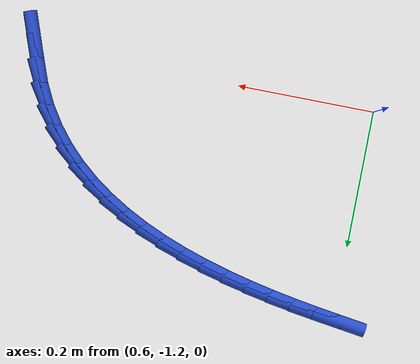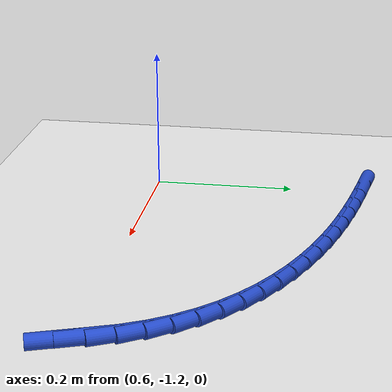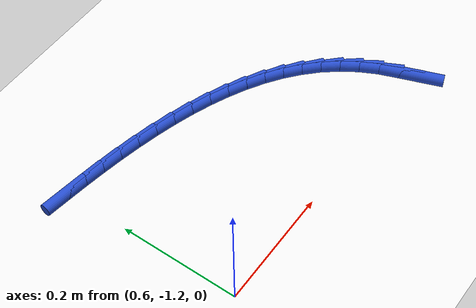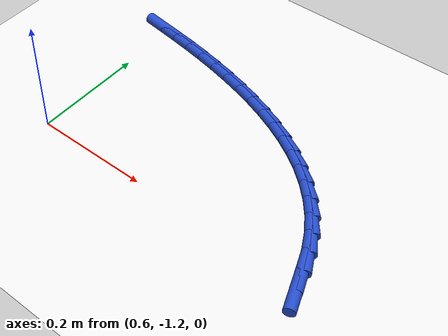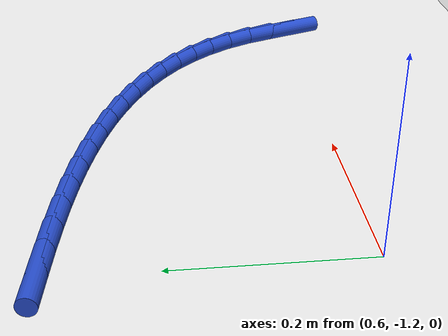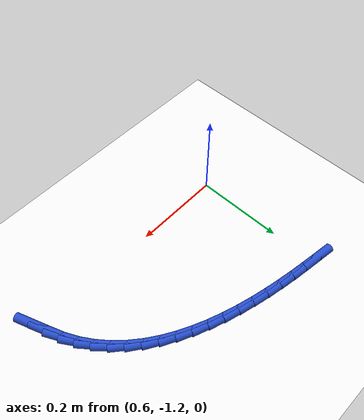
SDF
<sdf version="1.6">
 <world name="default">
  <model name="ground_plane">
   <static>1</static>
   <link name="link">
    <collision name="collision">
     <geometry><plane><normal>0 0 1</normal><size>100 100</size></plane></geometry>
     <surface><friction><ode><mu>100</mu><mu2>50</mu2></ode></friction></surface>
    </collision>
    <visual name="visual">
     <cast_shadows>0</cast_shadows>
     <geometry><plane><normal>0 0 1</normal><size>100 100</size></plane></geometry>
     <material>
      <script><uri>file://media/materials/scripts/gazebo.material</uri><name>Gazebo/WhiteGlow</name></script>
     </material>
    </visual>
   </link>
  </model>
  <model name="line">
   <link name="link_175">
    <pose>1.103748290629479 -1.2097589346634454 0.01 0 1.57 -1.228750808588092</pose>
    <collision name="collision">
     <geometry><cylinder><radius>0.01</radius><length>0.08</length></cylinder></geometry>
    </collision>
    <visual name="visual">
     <material>
      <script><name>Gazebo/Blue</name><uri>file://media/materials/scripts/gazebo.material</uri></script>
     </material>
     <geometry><cylinder><radius>0.01</radius><length>0.08</length></cylinder></geometry>
    </visual>
   </link>
   <link name="link_176">
    <pose>1.0928840651588438 -1.179244877748922 0.01 0 1.57 -1.2169996702758674</pose>
    <collision name="collision">
     <geometry><cylinder><radius>0.01</radius><length>0.08</length></cylinder></geometry>
    </collision>
    <visual name="visual">
     <material>
      <script><name>Gazebo/Blue</name><uri>file://media/materials/scripts/gazebo.material</uri></script>
     </material>
     <geometry><cylinder><radius>0.01</radius><length>0.08</length></cylinder></geometry>
    </visual>
   </link>
   <link name="link_177">
    <pose>1.0810014767592993 -1.1470721266346833 0.01 0 1.57 -1.1095875303991438</pose>
    <collision name="collision">
     <geometry><cylinder><radius>0.01</radius><length>0.08</length></cylinder></geometry>
    </collision>
    <visual name="visual">
     <material>
      <script><name>Gazebo/Blue</name><uri>file://media/materials/scripts/gazebo.material</uri></script>
     </material>
     <geometry><cylinder><radius>0.01</radius><length>0.08</length></cylinder></geometry>
    </visual>
   </link>
   <link name="link_178">
    <pose>1.0662027976451305 -1.1172934275080728 0.01 0 1.57 -0.9987860658776049</pose>
    <collision name="collision">
     <geometry><cylinder><radius>0.01</radius><length>0.08</length></cylinder></geometry>
    </collision>
    <visual name="visual">
     <material>
      <script><name>Gazebo/Blue</name><uri>file://media/materials/scripts/gazebo.material</uri></script>
     </material>
     <geometry><cylinder><radius>0.01</radius><length>0.08</length></cylinder></geometry>
    </visual>
   </link>
   <link name="link_179">
    <pose>1.0486090641173993 -1.0899658339612566 0.01 0 1.57 -0.8916485913457685</pose>
    <collision name="collision">
     <geometry><cylinder><radius>0.01</radius><length>0.08</length></cylinder></geometry>
    </collision>
    <visual name="visual">
     <material>
      <script><name>Gazebo/Blue</name><uri>file://media/materials/scripts/gazebo.material</uri></script>
     </material>
     <geometry><cylinder><radius>0.01</radius><length>0.08</length></cylinder></geometry>
    </visual>
   </link>
   <link name="link_180">
    <pose>1.0284306946133535 -1.0649694876123725 0.01 0 1.57 -0.7905234620254206</pose>
    <collision name="collision">
     <geometry><cylinder><radius>0.01</radius><length>0.08</length></cylinder></geometry>
    </collision>
    <visual name="visual">
     <material>
      <script><name>Gazebo/Blue</name><uri>file://media/materials/scripts/gazebo.material</uri></script>
     </material>
     <geometry><cylinder><radius>0.01</radius><length>0.08</length></cylinder></geometry>
    </visual>
   </link>
   <link name="link_181">
    <pose>1.0058781075702385 -1.0421845300795542 0.01 0 1.57 -0.6970365694802979</pose>
    <collision name="collision">
     <geometry><cylinder><radius>0.01</radius><length>0.08</length></cylinder></geometry>
    </collision>
    <visual name="visual">
     <material>
      <script><name>Gazebo/Blue</name><uri>file://media/materials/scripts/gazebo.material</uri></script>
     </material>
     <geometry><cylinder><radius>0.01</radius><length>0.08</length></cylinder></geometry>
    </visual>
   </link>
   <link name="link_182">
    <pose>0.981161721425302 -1.0214911029809381 0.01 0 1.57 -0.6120564044795949</pose>
    <collision name="collision">
     <geometry><cylinder><radius>0.01</radius><length>0.08</length></cylinder></geometry>
    </collision>
    <visual name="visual">
     <material>
      <script><name>Gazebo/Blue</name><uri>file://media/materials/scripts/gazebo.material</uri></script>
     </material>
     <geometry><cylinder><radius>0.01</radius><length>0.08</length></cylinder></geometry>
    </visual>
   </link>
   <link name="link_183">
    <pose>0.9544919546157903 -1.002769347934659 0.01 0 1.57 -0.5358082066809844</pose>
    <collision name="collision">
     <geometry><cylinder><radius>0.01</radius><length>0.08</length></cylinder></geometry>
    </collision>
    <visual name="visual">
     <material>
      <script><name>Gazebo/Blue</name><uri>file://media/materials/scripts/gazebo.material</uri></script>
     </material>
     <geometry><cylinder><radius>0.01</radius><length>0.08</length></cylinder></geometry>
    </visual>
   </link>
   <link name="link_184">
    <pose>0.9260792255789495 -0.9858994065588522 0.01 0 1.57 -0.4680552283195749</pose>
    <collision name="collision">
     <geometry><cylinder><radius>0.01</radius><length>0.08</length></cylinder></geometry>
    </collision>
    <visual name="visual">
     <material>
      <script><name>Gazebo/Blue</name><uri>file://media/materials/scripts/gazebo.material</uri></script>
     </material>
     <geometry><cylinder><radius>0.01</radius><length>0.08</length></cylinder></geometry>
    </visual>
   </link>
   <link name="link_185">
    <pose>0.8961339527520279 -0.9707614204716544 0.01 0 1.57 -0.40827983102455084</pose>
    <collision name="collision">
     <geometry><cylinder><radius>0.01</radius><length>0.08</length></cylinder></geometry>
    </collision>
    <visual name="visual">
     <material>
      <script><name>Gazebo/Blue</name><uri>file://media/materials/scripts/gazebo.material</uri></script>
     </material>
     <geometry><cylinder><radius>0.01</radius><length>0.08</length></cylinder></geometry>
    </visual>
   </link>
   <link name="link_186">
    <pose>0.8648665545722716 -0.9572355312912002 0.01 0 1.57 -0.35582926688258515</pose>
    <collision name="collision">
     <geometry><cylinder><radius>0.01</radius><length>0.08</length></cylinder></geometry>
    </collision>
    <visual name="visual">
     <material>
      <script><name>Gazebo/Blue</name><uri>file://media/materials/scripts/gazebo.material</uri></script>
     </material>
     <geometry><cylinder><radius>0.01</radius><length>0.08</length></cylinder></geometry>
    </visual>
   </link>
   <link name="link_187">
    <pose>0.832487449476927 -0.945201880635625 0.01 0 1.57 -0.31001757902836036</pose>
    <collision name="collision">
     <geometry><cylinder><radius>0.01</radius><length>0.08</length></cylinder></geometry>
    </collision>
    <visual name="visual">
     <material>
      <script><name>Gazebo/Blue</name><uri>file://media/materials/scripts/gazebo.material</uri></script>
     </material>
     <geometry><cylinder><radius>0.01</radius><length>0.08</length></cylinder></geometry>
    </visual>
   </link>
   <link name="link_188">
    <pose>0.7992070559032403 -0.9345406101230642 0.01 0 1.57 -0.27018934025861385</pose>
    <collision name="collision">
     <geometry><cylinder><radius>0.01</radius><length>0.08</length></cylinder></geometry>
    </collision>
    <visual name="visual">
     <material>
      <script><name>Gazebo/Blue</name><uri>file://media/materials/scripts/gazebo.material</uri></script>
     </material>
     <geometry><cylinder><radius>0.01</radius><length>0.08</length></cylinder></geometry>
    </visual>
   </link>
   <link name="link_189">
    <pose>0.76523579228846 -0.925131861371654 0.01 0 1.57 -0.2357555774785419</pose>
    <collision name="collision">
     <geometry><cylinder><radius>0.01</radius><length>0.08</length></cylinder></geometry>
    </collision>
    <visual name="visual">
     <material>
      <script><name>Gazebo/Blue</name><uri>file://media/materials/scripts/gazebo.material</uri></script>
     </material>
     <geometry><cylinder><radius>0.01</radius><length>0.08</length></cylinder></geometry>
    </visual>
   </link>
   <link name="link_190">
    <pose>0.7307840770698318 -0.9168557759995294 0.01 0 1.57 -0.20621180546015414</pose>
    <collision name="collision">
     <geometry><cylinder><radius>0.01</radius><length>0.08</length></cylinder></geometry>
    </collision>
    <visual name="visual">
     <material>
      <script><name>Gazebo/Blue</name><uri>file://media/materials/scripts/gazebo.material</uri></script>
     </material>
     <geometry><cylinder><radius>0.01</radius><length>0.08</length></cylinder></geometry>
    </visual>
   </link>
   <link name="link_191">
    <pose>0.6960623286846024 -0.9095924956248255 0.01 0 1.57 -0.18114593274593097</pose>
    <collision name="collision">
     <geometry><cylinder><radius>0.01</radius><length>0.08</length></cylinder></geometry>
    </collision>
    <visual name="visual">
     <material>
      <script><name>Gazebo/Blue</name><uri>file://media/materials/scripts/gazebo.material</uri></script>
     </material>
     <geometry><cylinder><radius>0.01</radius><length>0.08</length></cylinder></geometry>
    </visual>
   </link>
   <link name="link_192">
    <pose>0.661280965570018 -0.9032221618656784 0.01 0 1.57 -0.16024158726747723</pose>
    <collision name="collision">
     <geometry><cylinder><radius>0.01</radius><length>0.08</length></cylinder></geometry>
    </collision>
    <visual name="visual">
     <material>
      <script><name>Gazebo/Blue</name><uri>file://media/materials/scripts/gazebo.material</uri></script>
     </material>
     <geometry><cylinder><radius>0.01</radius><length>0.08</length></cylinder></geometry>
    </visual>
   </link>
   <link name="link_193">
    <pose>0.6266504061633271 -0.8976249163402235 0.01 0 1.57 -0.14403155323545788</pose>
    <collision name="collision">
     <geometry><cylinder><radius>0.01</radius><length>0.08</length></cylinder></geometry>
    </collision>
    <visual name="visual">
     <material>
      <script><name>Gazebo/Blue</name><uri>file://media/materials/scripts/gazebo.material</uri></script>
     </material>
     <geometry><cylinder><radius>0.01</radius><length>0.08</length></cylinder></geometry>
    </visual>
   </link>
   <link name="link_194">
    <pose>0.5923785725313718 -0.8926542711209343 0.01 0 1.57 -0.13928320540664837</pose>
    <collision name="collision">
     <geometry><cylinder><radius>0.01</radius><length>0.08</length></cylinder></geometry>
    </collision>
    <visual name="visual">
     <material>
      <script><name>Gazebo/Blue</name><uri>file://media/materials/scripts/gazebo.material</uri></script>
     </material>
     <geometry><cylinder><radius>0.01</radius><length>0.08</length></cylinder></geometry>
    </visual>
   </link>
  </model>
 </world>
</sdf>
